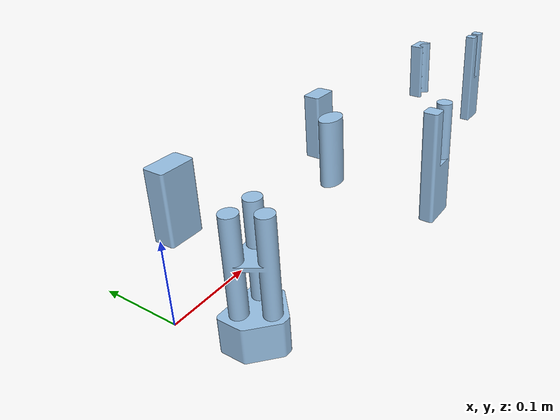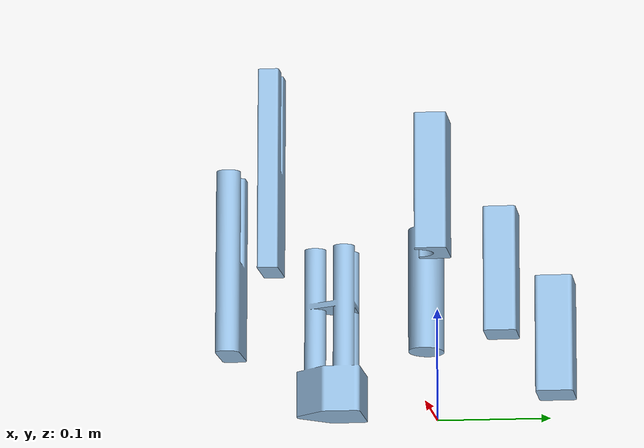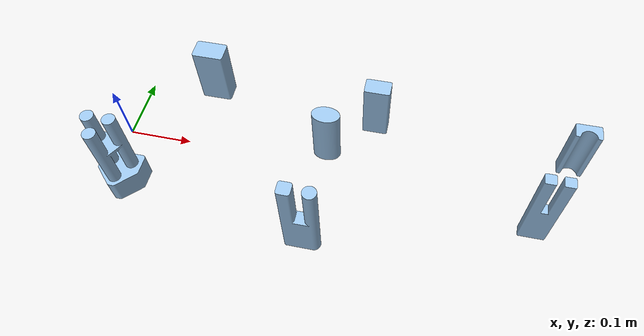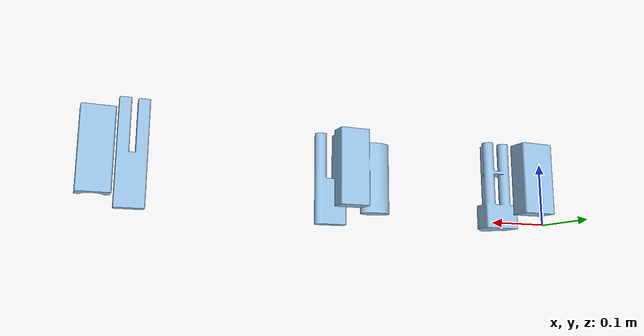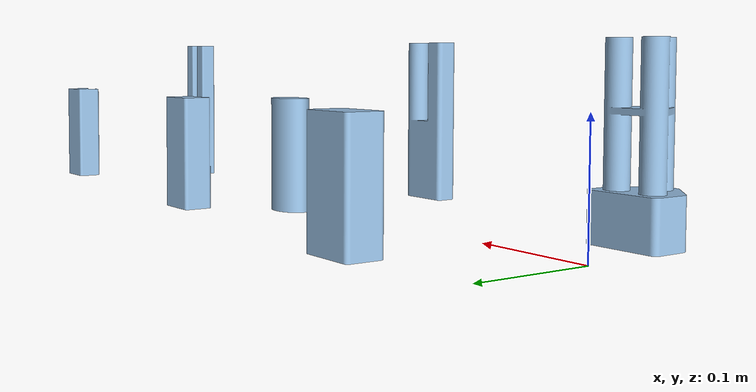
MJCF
<?xml version='1.0' encoding='utf-8'?>
<mujoco model="obj3">
  <asset>
    <mesh name="obj3" file="obj3.obj" scale="0.001 0.001 0.001" />
    <material name="mat3" rgba="0.60392 0.76471 0.9098 1" />
  </asset>
  <worldbody>
    <body>
      <body name="object">
        <geom name="visual" mesh="obj3" type="mesh" group="1" contype="0" conaffinity="0" material="mat3" />
        <geom name="collision" mesh="obj3" type="mesh" group="0" density="50" friction="0.95 0.3 0.1" solimp="0.998 0.998 0.001" solref="0.001 1" condim="4" />
      </body>
      <site name="bottom_site" pos="0 0 -0.025" size="0.005" rgba="0 0 0 0" />
      <site name="top_site" pos="0 0 0.025" size="0.005" rgba="0 0 0 0" />
      <site name="horizontal_radius_site" pos="0.03 0.03 0" size="0.005" rgba="0 0 0 0" />
    </body>
  </worldbody>
</mujoco>
